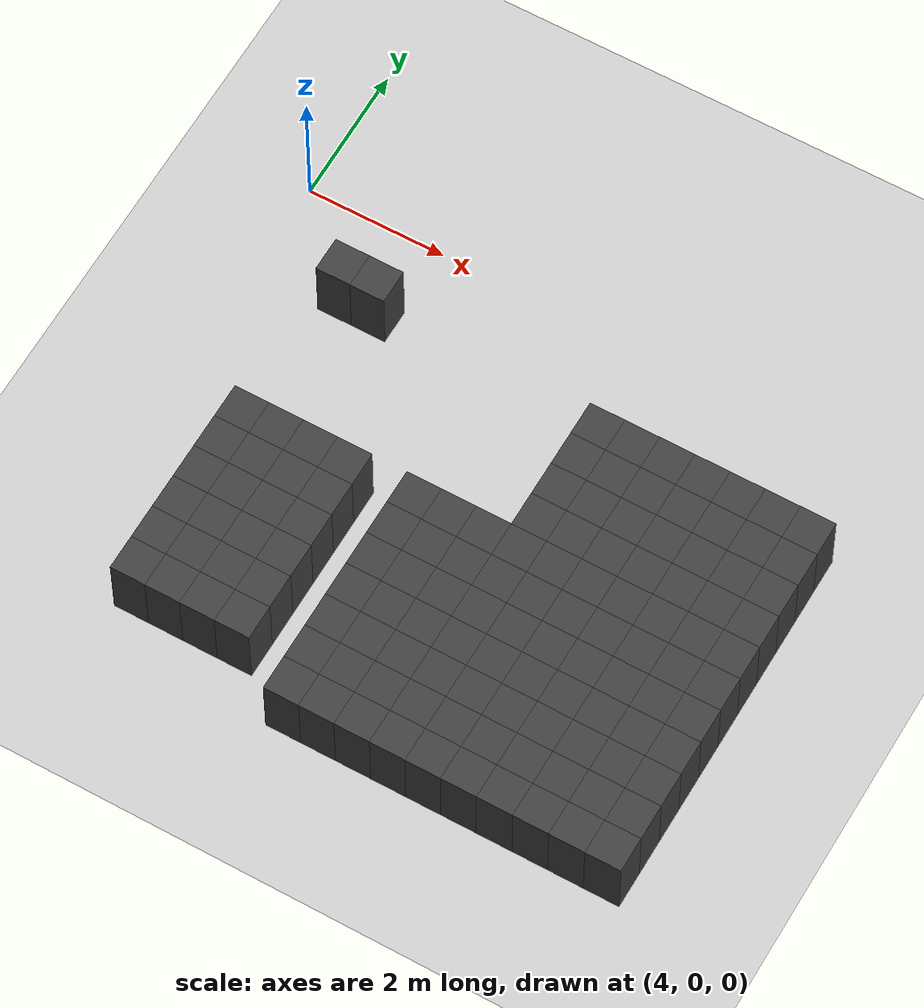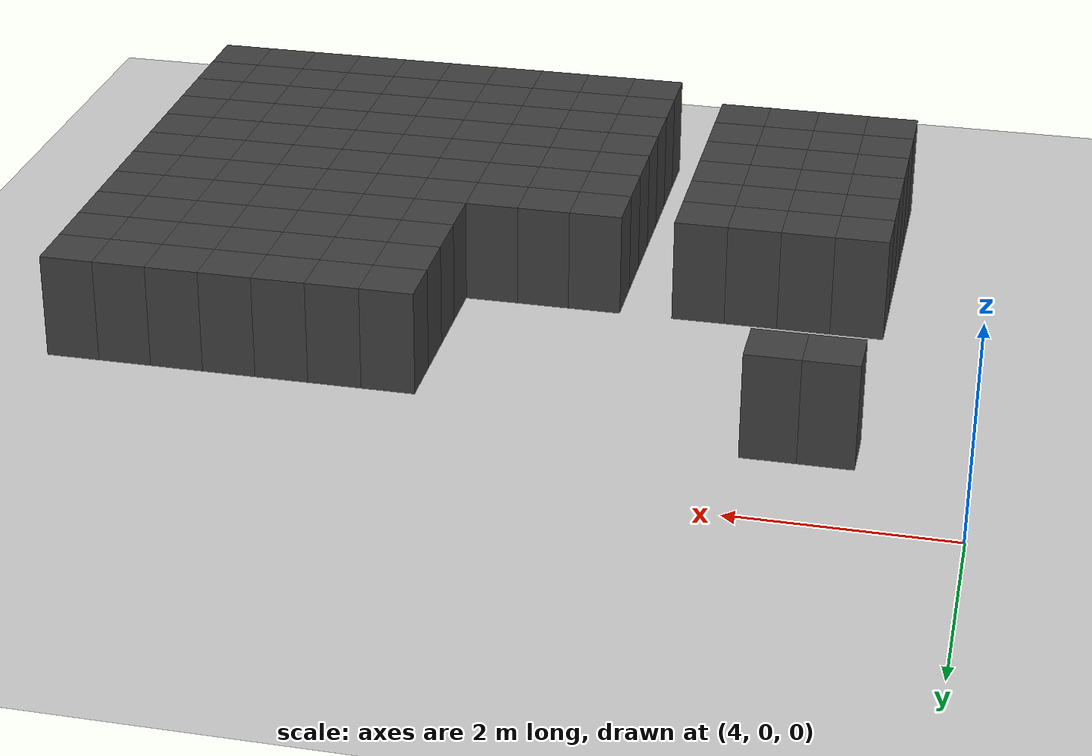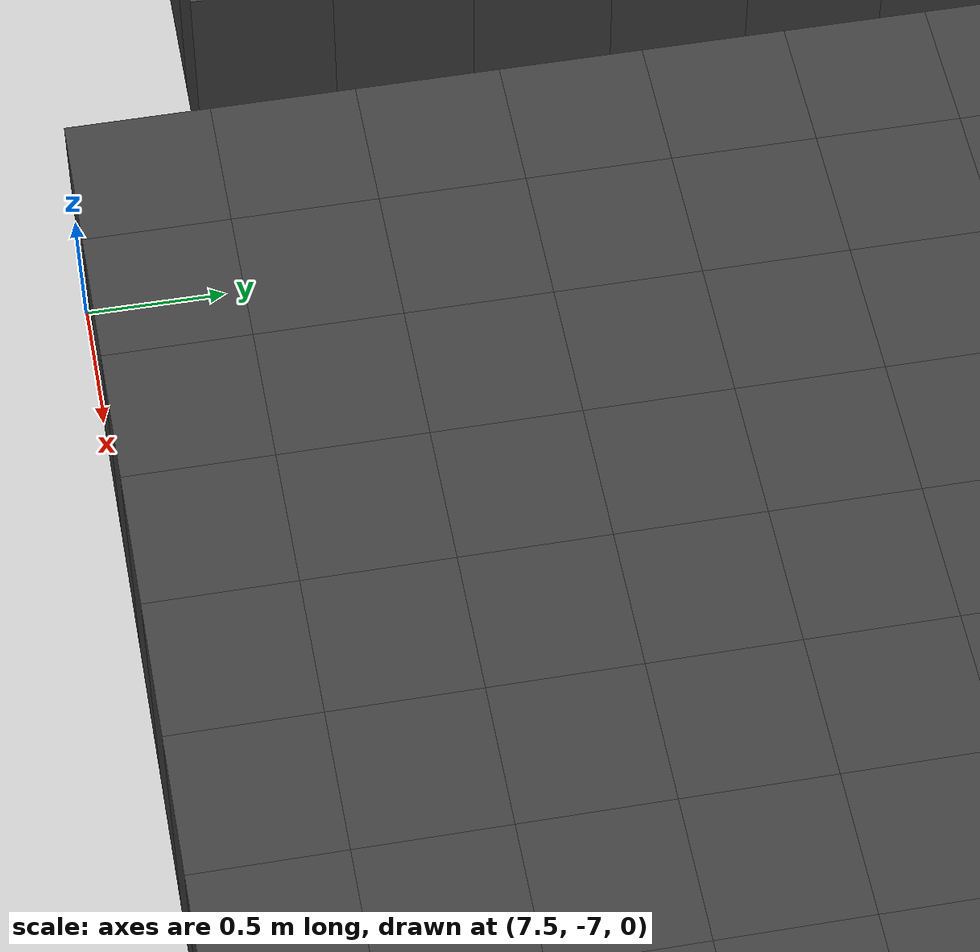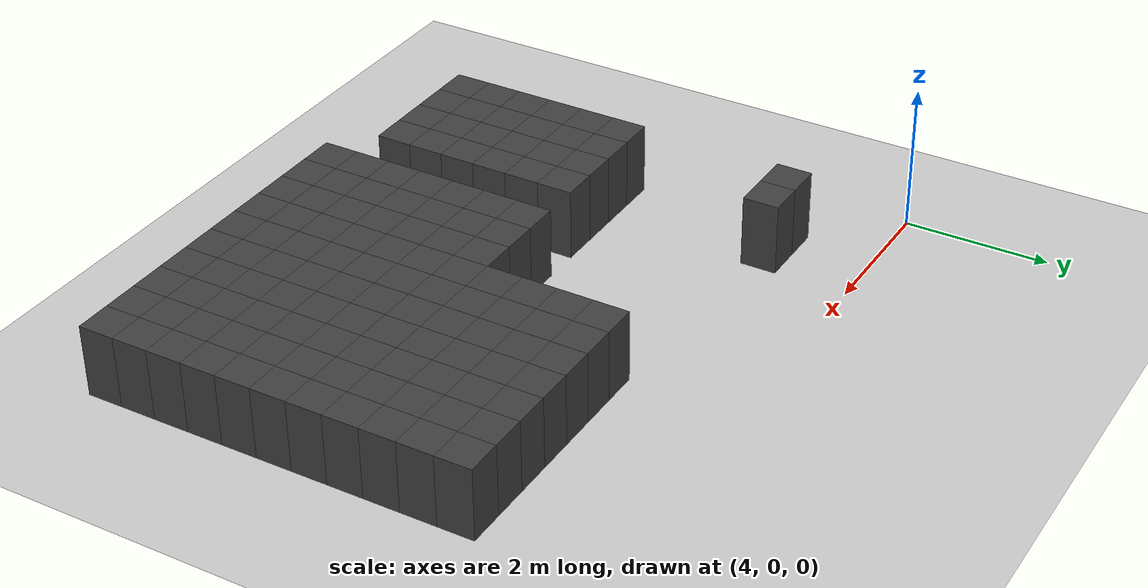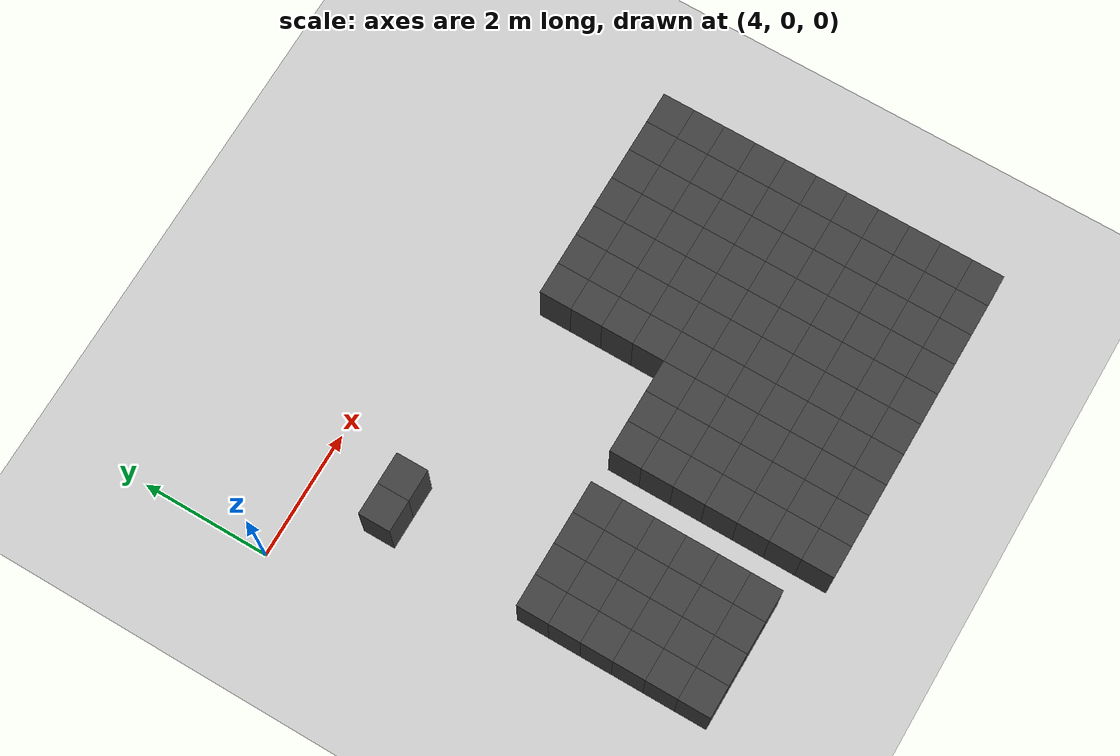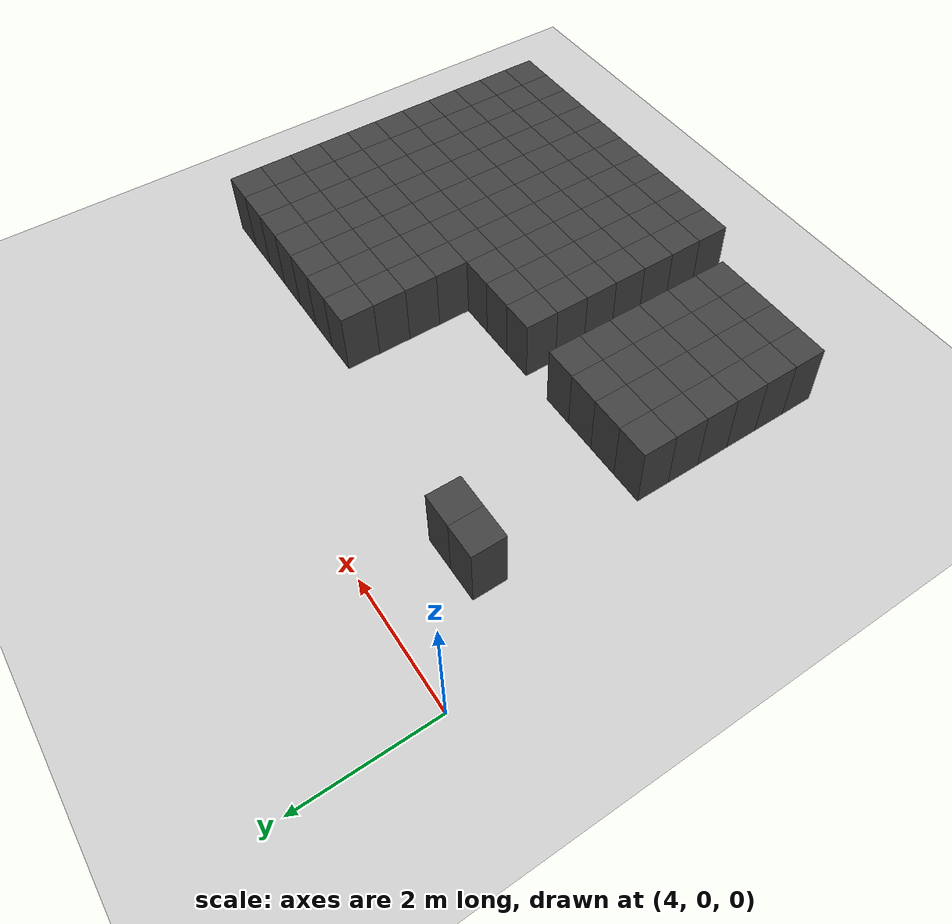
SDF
<sdf version="1.7">
 <world name="map_10726">
  <model name="ground_plane">
   <static>true</static>
   <link name="link">
    <collision name="collision">
     <geometry><plane><normal>0 0 1</normal><size>200 200</size></plane></geometry>
    </collision>
    <visual name="visual">
     <geometry><plane><normal>0 0 1</normal><size>200 200</size></plane></geometry>
     <material><ambient>0.8 0.8 0.8 1</ambient><diffuse>0.8 0.8 0.8 1</diffuse></material>
    </visual>
   </link>
  </model>
  <model name="maze_environment">
   <static>true</static>
   <link name="wall_1225">
    <pose>5.250 -1.250 0.500 0 0 0</pose>
    <collision name="col"><geometry><box><size>0.5 0.5 1.0</size></box></geometry></collision>
    <visual name="vis">
     <geometry><box><size>0.5 0.5 1.0</size></box></geometry>
     <material><ambient>0.15 0.15 0.15 1</ambient><diffuse>0.25 0.25 0.25 1</diffuse></material>
    </visual>
   </link>
   <link name="wall_1226">
    <pose>5.750 -1.250 0.500 0 0 0</pose>
    <collision name="col"><geometry><box><size>0.5 0.5 1.0</size></box></geometry></collision>
    <visual name="vis">
     <geometry><box><size>0.5 0.5 1.0</size></box></geometry>
     <material><ambient>0.15 0.15 0.15 1</ambient><diffuse>0.25 0.25 0.25 1</diffuse></material>
    </visual>
   </link>
   <link name="wall_1265">
    <pose>9.250 -1.750 0.500 0 0 0</pose>
    <collision name="col"><geometry><box><size>0.5 0.5 1.0</size></box></geometry></collision>
    <visual name="vis">
     <geometry><box><size>0.5 0.5 1.0</size></box></geometry>
     <material><ambient>0.15 0.15 0.15 1</ambient><diffuse>0.25 0.25 0.25 1</diffuse></material>
    </visual>
   </link>
   <link name="wall_1266">
    <pose>9.750 -1.750 0.500 0 0 0</pose>
    <collision name="col"><geometry><box><size>0.5 0.5 1.0</size></box></geometry></collision>
    <visual name="vis">
     <geometry><box><size>0.5 0.5 1.0</size></box></geometry>
     <material><ambient>0.15 0.15 0.15 1</ambient><diffuse>0.25 0.25 0.25 1</diffuse></material>
    </visual>
   </link>
   <link name="wall_1267">
    <pose>10.250 -1.750 0.500 0 0 0</pose>
    <collision name="col"><geometry><box><size>0.5 0.5 1.0</size></box></geometry></collision>
    <visual name="vis">
     <geometry><box><size>0.5 0.5 1.0</size></box></geometry>
     <material><ambient>0.15 0.15 0.15 1</ambient><diffuse>0.25 0.25 0.25 1</diffuse></material>
    </visual>
   </link>
   <link name="wall_1268">
    <pose>10.750 -1.750 0.500 0 0 0</pose>
    <collision name="col"><geometry><box><size>0.5 0.5 1.0</size></box></geometry></collision>
    <visual name="vis">
     <geometry><box><size>0.5 0.5 1.0</size></box></geometry>
     <material><ambient>0.15 0.15 0.15 1</ambient><diffuse>0.25 0.25 0.25 1</diffuse></material>
    </visual>
   </link>
   <link name="wall_1269">
    <pose>11.250 -1.750 0.500 0 0 0</pose>
    <collision name="col"><geometry><box><size>0.5 0.5 1.0</size></box></geometry></collision>
    <visual name="vis">
     <geometry><box><size>0.5 0.5 1.0</size></box></geometry>
     <material><ambient>0.15 0.15 0.15 1</ambient><diffuse>0.25 0.25 0.25 1</diffuse></material>
    </visual>
   </link>
   <link name="wall_1270">
    <pose>11.750 -1.750 0.500 0 0 0</pose>
    <collision name="col"><geometry><box><size>0.5 0.5 1.0</size></box></geometry></collision>
    <visual name="vis">
     <geometry><box><size>0.5 0.5 1.0</size></box></geometry>
     <material><ambient>0.15 0.15 0.15 1</ambient><diffuse>0.25 0.25 0.25 1</diffuse></material>
    </visual>
   </link>
   <link name="wall_1271">
    <pose>12.250 -1.750 0.500 0 0 0</pose>
    <collision name="col"><geometry><box><size>0.5 0.5 1.0</size></box></geometry></collision>
    <visual name="vis">
     <geometry><box><size>0.5 0.5 1.0</size></box></geometry>
     <material><ambient>0.15 0.15 0.15 1</ambient><diffuse>0.25 0.25 0.25 1</diffuse></material>
    </visual>
   </link>
   <link name="wall_1297">
    <pose>9.250 -2.250 0.500 0 0 0</pose>
    <collision name="col"><geometry><box><size>0.5 0.5 1.0</size></box></geometry></collision>
    <visual name="vis">
     <geometry><box><size>0.5 0.5 1.0</size></box></geometry>
     <material><ambient>0.15 0.15 0.15 1</ambient><diffuse>0.25 0.25 0.25 1</diffuse></material>
    </visual>
   </link>
   <link name="wall_1298">
    <pose>9.750 -2.250 0.500 0 0 0</pose>
    <collision name="col"><geometry><box><size>0.5 0.5 1.0</size></box></geometry></collision>
    <visual name="vis">
     <geometry><box><size>0.5 0.5 1.0</size></box></geometry>
     <material><ambient>0.15 0.15 0.15 1</ambient><diffuse>0.25 0.25 0.25 1</diffuse></material>
    </visual>
   </link>
   <link name="wall_1299">
    <pose>10.250 -2.250 0.500 0 0 0</pose>
    <collision name="col"><geometry><box><size>0.5 0.5 1.0</size></box></geometry></collision>
    <visual name="vis">
     <geometry><box><size>0.5 0.5 1.0</size></box></geometry>
     <material><ambient>0.15 0.15 0.15 1</ambient><diffuse>0.25 0.25 0.25 1</diffuse></material>
    </visual>
   </link>
   <link name="wall_1300">
    <pose>10.750 -2.250 0.500 0 0 0</pose>
    <collision name="col"><geometry><box><size>0.5 0.5 1.0</size></box></geometry></collision>
    <visual name="vis">
     <geometry><box><size>0.5 0.5 1.0</size></box></geometry>
     <material><ambient>0.15 0.15 0.15 1</ambient><diffuse>0.25 0.25 0.25 1</diffuse></material>
    </visual>
   </link>
   <link name="wall_1301">
    <pose>11.250 -2.250 0.500 0 0 0</pose>
    <collision name="col"><geometry><box><size>0.5 0.5 1.0</size></box></geometry></collision>
    <visual name="vis">
     <geometry><box><size>0.5 0.5 1.0</size></box></geometry>
     <material><ambient>0.15 0.15 0.15 1</ambient><diffuse>0.25 0.25 0.25 1</diffuse></material>
    </visual>
   </link>
   <link name="wall_1302">
    <pose>11.750 -2.250 0.500 0 0 0</pose>
    <collision name="col"><geometry><box><size>0.5 0.5 1.0</size></box></geometry></collision>
    <visual name="vis">
     <geometry><box><size>0.5 0.5 1.0</size></box></geometry>
     <material><ambient>0.15 0.15 0.15 1</ambient><diffuse>0.25 0.25 0.25 1</diffuse></material>
    </visual>
   </link>
   <link name="wall_1303">
    <pose>12.250 -2.250 0.500 0 0 0</pose>
    <collision name="col"><geometry><box><size>0.5 0.5 1.0</size></box></geometry></collision>
    <visual name="vis">
     <geometry><box><size>0.5 0.5 1.0</size></box></geometry>
     <material><ambient>0.15 0.15 0.15 1</ambient><diffuse>0.25 0.25 0.25 1</diffuse></material>
    </visual>
   </link>
   <link name="wall_1321">
    <pose>9.250 -2.750 0.500 0 0 0</pose>
    <collision name="col"><geometry><box><size>0.5 0.5 1.0</size></box></geometry></collision>
    <visual name="vis">
     <geometry><box><size>0.5 0.5 1.0</size></box></geometry>
     <material><ambient>0.15 0.15 0.15 1</ambient><diffuse>0.25 0.25 0.25 1</diffuse></material>
    </visual>
   </link>
   <link name="wall_1322">
    <pose>9.750 -2.750 0.500 0 0 0</pose>
    <collision name="col"><geometry><box><size>0.5 0.5 1.0</size></box></geometry></collision>
    <visual name="vis">
     <geometry><box><size>0.5 0.5 1.0</size></box></geometry>
     <material><ambient>0.15 0.15 0.15 1</ambient><diffuse>0.25 0.25 0.25 1</diffuse></material>
    </visual>
   </link>
   <link name="wall_1323">
    <pose>10.250 -2.750 0.500 0 0 0</pose>
    <collision name="col"><geometry><box><size>0.5 0.5 1.0</size></box></geometry></collision>
    <visual name="vis">
     <geometry><box><size>0.5 0.5 1.0</size></box></geometry>
     <material><ambient>0.15 0.15 0.15 1</ambient><diffuse>0.25 0.25 0.25 1</diffuse></material>
    </visual>
   </link>
   <link name="wall_1324">
    <pose>10.750 -2.750 0.500 0 0 0</pose>
    <collision name="col"><geometry><box><size>0.5 0.5 1.0</size></box></geometry></collision>
    <visual name="vis">
     <geometry><box><size>0.5 0.5 1.0</size></box></geometry>
     <material><ambient>0.15 0.15 0.15 1</ambient><diffuse>0.25 0.25 0.25 1</diffuse></material>
    </visual>
   </link>
   <link name="wall_1325">
    <pose>11.250 -2.750 0.500 0 0 0</pose>
    <collision name="col"><geometry><box><size>0.5 0.5 1.0</size></box></geometry></collision>
    <visual name="vis">
     <geometry><box><size>0.5 0.5 1.0</size></box></geometry>
     <material><ambient>0.15 0.15 0.15 1</ambient><diffuse>0.25 0.25 0.25 1</diffuse></material>
    </visual>
   </link>
   <link name="wall_1326">
    <pose>11.750 -2.750 0.500 0 0 0</pose>
    <collision name="col"><geometry><box><size>0.5 0.5 1.0</size></box></geometry></collision>
    <visual name="vis">
     <geometry><box><size>0.5 0.5 1.0</size></box></geometry>
     <material><ambient>0.15 0.15 0.15 1</ambient><diffuse>0.25 0.25 0.25 1</diffuse></material>
    </visual>
   </link>
   <link name="wall_1327">
    <pose>12.250 -2.750 0.500 0 0 0</pose>
    <collision name="col"><geometry><box><size>0.5 0.5 1.0</size></box></geometry></collision>
    <visual name="vis">
     <geometry><box><size>0.5 0.5 1.0</size></box></geometry>
     <material><ambient>0.15 0.15 0.15 1</ambient><diffuse>0.25 0.25 0.25 1</diffuse></material>
    </visual>
   </link>
   <link name="wall_1353">
    <pose>9.250 -3.250 0.500 0 0 0</pose>
    <collision name="col"><geometry><box><size>0.5 0.5 1.0</size></box></geometry></collision>
    <visual name="vis">
     <geometry><box><size>0.5 0.5 1.0</size></box></geometry>
     <material><ambient>0.15 0.15 0.15 1</ambient><diffuse>0.25 0.25 0.25 1</diffuse></material>
    </visual>
   </link>
   <link name="wall_1354">
    <pose>9.750 -3.250 0.500 0 0 0</pose>
    <collision name="col"><geometry><box><size>0.5 0.5 1.0</size></box></geometry></collision>
    <visual name="vis">
     <geometry><box><size>0.5 0.5 1.0</size></box></geometry>
     <material><ambient>0.15 0.15 0.15 1</ambient><diffuse>0.25 0.25 0.25 1</diffuse></material>
    </visual>
   </link>
   <link name="wall_1355">
    <pose>10.250 -3.250 0.500 0 0 0</pose>
    <collision name="col"><geometry><box><size>0.5 0.5 1.0</size></box></geometry></collision>
    <visual name="vis">
     <geometry><box><size>0.5 0.5 1.0</size></box></geometry>
     <material><ambient>0.15 0.15 0.15 1</ambient><diffuse>0.25 0.25 0.25 1</diffuse></material>
    </visual>
   </link>
   <link name="wall_1356">
    <pose>10.750 -3.250 0.500 0 0 0</pose>
    <collision name="col"><geometry><box><size>0.5 0.5 1.0</size></box></geometry></collision>
    <visual name="vis">
     <geometry><box><size>0.5 0.5 1.0</size></box></geometry>
     <material><ambient>0.15 0.15 0.15 1</ambient><diffuse>0.25 0.25 0.25 1</diffuse></material>
    </visual>
   </link>
   <link name="wall_1357">
    <pose>11.250 -3.250 0.500 0 0 0</pose>
    <collision name="col"><geometry><box><size>0.5 0.5 1.0</size></box></geometry></collision>
    <visual name="vis">
     <geometry><box><size>0.5 0.5 1.0</size></box></geometry>
     <material><ambient>0.15 0.15 0.15 1</ambient><diffuse>0.25 0.25 0.25 1</diffuse></material>
    </visual>
   </link>
   <link name="wall_1358">
    <pose>11.750 -3.250 0.500 0 0 0</pose>
    <collision name="col"><geometry><box><size>0.5 0.5 1.0</size></box></geometry></collision>
    <visual name="vis">
     <geometry><box><size>0.5 0.5 1.0</size></box></geometry>
     <material><ambient>0.15 0.15 0.15 1</ambient><diffuse>0.25 0.25 0.25 1</diffuse></material>
    </visual>
   </link>
   <link name="wall_1359">
    <pose>12.250 -3.250 0.500 0 0 0</pose>
    <collision name="col"><geometry><box><size>0.5 0.5 1.0</size></box></geometry></collision>
    <visual name="vis">
     <geometry><box><size>0.5 0.5 1.0</size></box></geometry>
     <material><ambient>0.15 0.15 0.15 1</ambient><diffuse>0.25 0.25 0.25 1</diffuse></material>
    </visual>
   </link>
   <link name="wall_1385">
    <pose>5.250 -3.750 0.500 0 0 0</pose>
    <collision name="col"><geometry><box><size>0.5 0.5 1.0</size></box></geometry></collision>
    <visual name="vis">
     <geometry><box><size>0.5 0.5 1.0</size></box></geometry>
     <material><ambient>0.15 0.15 0.15 1</ambient><diffuse>0.25 0.25 0.25 1</diffuse></material>
    </visual>
   </link>
   <link name="wall_1386">
    <pose>5.750 -3.750 0.500 0 0 0</pose>
    <collision name="col"><geometry><box><size>0.5 0.5 1.0</size></box></geometry></collision>
    <visual name="vis">
     <geometry><box><size>0.5 0.5 1.0</size></box></geometry>
     <material><ambient>0.15 0.15 0.15 1</ambient><diffuse>0.25 0.25 0.25 1</diffuse></material>
    </visual>
   </link>
   <link name="wall_1387">
    <pose>6.250 -3.750 0.500 0 0 0</pose>
    <collision name="col"><geometry><box><size>0.5 0.5 1.0</size></box></geometry></collision>
    <visual name="vis">
     <geometry><box><size>0.5 0.5 1.0</size></box></geometry>
     <material><ambient>0.15 0.15 0.15 1</ambient><diffuse>0.25 0.25 0.25 1</diffuse></material>
    </visual>
   </link>
   <link name="wall_1388">
    <pose>6.750 -3.750 0.500 0 0 0</pose>
    <collision name="col"><geometry><box><size>0.5 0.5 1.0</size></box></geometry></collision>
    <visual name="vis">
     <geometry><box><size>0.5 0.5 1.0</size></box></geometry>
     <material><ambient>0.15 0.15 0.15 1</ambient><diffuse>0.25 0.25 0.25 1</diffuse></material>
    </visual>
   </link>
   <link name="wall_1389">
    <pose>7.750 -3.750 0.500 0 0 0</pose>
    <collision name="col"><geometry><box><size>0.5 0.5 1.0</size></box></geometry></collision>
    <visual name="vis">
     <geometry><box><size>0.5 0.5 1.0</size></box></geometry>
     <material><ambient>0.15 0.15 0.15 1</ambient><diffuse>0.25 0.25 0.25 1</diffuse></material>
    </visual>
   </link>
   <link name="wall_1390">
    <pose>8.250 -3.750 0.500 0 0 0</pose>
    <collision name="col"><geometry><box><size>0.5 0.5 1.0</size></box></geometry></collision>
    <visual name="vis">
     <geometry><box><size>0.5 0.5 1.0</size></box></geometry>
     <material><ambient>0.15 0.15 0.15 1</ambient><diffuse>0.25 0.25 0.25 1</diffuse></material>
    </visual>
   </link>
   <link name="wall_1391">
    <pose>8.750 -3.750 0.500 0 0 0</pose>
    <collision name="col"><geometry><box><size>0.5 0.5 1.0</size></box></geometry></collision>
    <visual name="vis">
     <geometry><box><size>0.5 0.5 1.0</size></box></geometry>
     <material><ambient>0.15 0.15 0.15 1</ambient><diffuse>0.25 0.25 0.25 1</diffuse></material>
    </visual>
   </link>
   <link name="wall_1392">
    <pose>9.250 -3.750 0.500 0 0 0</pose>
    <collision name="col"><geometry><box><size>0.5 0.5 1.0</size></box></geometry></collision>
    <visual name="vis">
     <geometry><box><size>0.5 0.5 1.0</size></box></geometry>
     <material><ambient>0.15 0.15 0.15 1</ambient><diffuse>0.25 0.25 0.25 1</diffuse></material>
    </visual>
   </link>
   <link name="wall_1393">
    <pose>9.750 -3.750 0.500 0 0 0</pose>
    <collision name="col"><geometry><box><size>0.5 0.5 1.0</size></box></geometry></collision>
    <visual name="vis">
     <geometry><box><size>0.5 0.5 1.0</size></box></geometry>
     <material><ambient>0.15 0.15 0.15 1</ambient><diffuse>0.25 0.25 0.25 1</diffuse></material>
    </visual>
   </link>
   <link name="wall_1394">
    <pose>10.250 -3.750 0.500 0 0 0</pose>
    <collision name="col"><geometry><box><size>0.5 0.5 1.0</size></box></geometry></collision>
    <visual name="vis">
     <geometry><box><size>0.5 0.5 1.0</size></box></geometry>
     <material><ambient>0.15 0.15 0.15 1</ambient><diffuse>0.25 0.25 0.25 1</diffuse></material>
    </visual>
   </link>
   <link name="wall_1395">
    <pose>10.750 -3.750 0.500 0 0 0</pose>
    <collision name="col"><geometry><box><size>0.5 0.5 1.0</size></box></geometry></collision>
    <visual name="vis">
     <geometry><box><size>0.5 0.5 1.0</size></box></geometry>
     <material><ambient>0.15 0.15 0.15 1</ambient><diffuse>0.25 0.25 0.25 1</diffuse></material>
    </visual>
   </link>
   <link name="wall_1396">
    <pose>11.250 -3.750 0.500 0 0 0</pose>
    <collision name="col"><geometry><box><size>0.5 0.5 1.0</size></box></geometry></collision>
    <visual name="vis">
     <geometry><box><size>0.5 0.5 1.0</size></box></geometry>
     <material><ambient>0.15 0.15 0.15 1</ambient><diffuse>0.25 0.25 0.25 1</diffuse></material>
    </visual>
   </link>
   <link name="wall_1397">
    <pose>11.750 -3.750 0.500 0 0 0</pose>
    <collision name="col"><geometry><box><size>0.5 0.5 1.0</size></box></geometry></collision>
    <visual name="vis">
     <geometry><box><size>0.5 0.5 1.0</size></box></geometry>
     <material><ambient>0.15 0.15 0.15 1</ambient><diffuse>0.25 0.25 0.25 1</diffuse></material>
    </visual>
   </link>
   <link name="wall_1398">
    <pose>12.250 -3.750 0.500 0 0 0</pose>
    <collision name="col"><geometry><box><size>0.5 0.5 1.0</size></box></geometry></collision>
    <visual name="vis">
     <geometry><box><size>0.5 0.5 1.0</size></box></geometry>
     <material><ambient>0.15 0.15 0.15 1</ambient><diffuse>0.25 0.25 0.25 1</diffuse></material>
    </visual>
   </link>
   <link name="wall_1419">
    <pose>5.250 -4.250 0.500 0 0 0</pose>
    <collision name="col"><geometry><box><size>0.5 0.5 1.0</size></box></geometry></collision>
    <visual name="vis">
     <geometry><box><size>0.5 0.5 1.0</size></box></geometry>
     <material><ambient>0.15 0.15 0.15 1</ambient><diffuse>0.25 0.25 0.25 1</diffuse></material>
    </visual>
   </link>
   <link name="wall_1420">
    <pose>5.750 -4.250 0.500 0 0 0</pose>
    <collision name="col"><geometry><box><size>0.5 0.5 1.0</size></box></geometry></collision>
    <visual name="vis">
     <geometry><box><size>0.5 0.5 1.0</size></box></geometry>
     <material><ambient>0.15 0.15 0.15 1</ambient><diffuse>0.25 0.25 0.25 1</diffuse></material>
    </visual>
   </link>
   <link name="wall_1421">
    <pose>6.250 -4.250 0.500 0 0 0</pose>
    <collision name="col"><geometry><box><size>0.5 0.5 1.0</size></box></geometry></collision>
    <visual name="vis">
     <geometry><box><size>0.5 0.5 1.0</size></box></geometry>
     <material><ambient>0.15 0.15 0.15 1</ambient><diffuse>0.25 0.25 0.25 1</diffuse></material>
    </visual>
   </link>
   <link name="wall_1422">
    <pose>6.750 -4.250 0.500 0 0 0</pose>
    <collision name="col"><geometry><box><size>0.5 0.5 1.0</size></box></geometry></collision>
    <visual name="vis">
     <geometry><box><size>0.5 0.5 1.0</size></box></geometry>
     <material><ambient>0.15 0.15 0.15 1</ambient><diffuse>0.25 0.25 0.25 1</diffuse></material>
    </visual>
   </link>
   <link name="wall_1423">
    <pose>7.750 -4.250 0.500 0 0 0</pose>
    <collision name="col"><geometry><box><size>0.5 0.5 1.0</size></box></geometry></collision>
    <visual name="vis">
     <geometry><box><size>0.5 0.5 1.0</size></box></geometry>
     <material><ambient>0.15 0.15 0.15 1</ambient><diffuse>0.25 0.25 0.25 1</diffuse></material>
    </visual>
   </link>
   <link name="wall_1424">
    <pose>8.250 -4.250 0.500 0 0 0</pose>
    <collision name="col"><geometry><box><size>0.5 0.5 1.0</size></box></geometry></collision>
    <visual name="vis">
     <geometry><box><size>0.5 0.5 1.0</size></box></geometry>
     <material><ambient>0.15 0.15 0.15 1</ambient><diffuse>0.25 0.25 0.25 1</diffuse></material>
    </visual>
   </link>
   <link name="wall_1425">
    <pose>8.750 -4.250 0.500 0 0 0</pose>
    <collision name="col"><geometry><box><size>0.5 0.5 1.0</size></box></geometry></collision>
    <visual name="vis">
     <geometry><box><size>0.5 0.5 1.0</size></box></geometry>
     <material><ambient>0.15 0.15 0.15 1</ambient><diffuse>0.25 0.25 0.25 1</diffuse></material>
    </visual>
   </link>
   <link name="wall_1426">
    <pose>9.250 -4.250 0.500 0 0 0</pose>
    <collision name="col"><geometry><box><size>0.5 0.5 1.0</size></box></geometry></collision>
    <visual name="vis">
     <geometry><box><size>0.5 0.5 1.0</size></box></geometry>
     <material><ambient>0.15 0.15 0.15 1</ambient><diffuse>0.25 0.25 0.25 1</diffuse></material>
    </visual>
   </link>
   <link name="wall_1427">
    <pose>9.750 -4.250 0.500 0 0 0</pose>
    <collision name="col"><geometry><box><size>0.5 0.5 1.0</size></box></geometry></collision>
    <visual name="vis">
     <geometry><box><size>0.5 0.5 1.0</size></box></geometry>
     <material><ambient>0.15 0.15 0.15 1</ambient><diffuse>0.25 0.25 0.25 1</diffuse></material>
    </visual>
   </link>
   <link name="wall_1428">
    <pose>10.250 -4.250 0.500 0 0 0</pose>
    <collision name="col"><geometry><box><size>0.5 0.5 1.0</size></box></geometry></collision>
    <visual name="vis">
     <geometry><box><size>0.5 0.5 1.0</size></box></geometry>
     <material><ambient>0.15 0.15 0.15 1</ambient><diffuse>0.25 0.25 0.25 1</diffuse></material>
    </visual>
   </link>
   <link name="wall_1429">
    <pose>10.750 -4.250 0.500 0 0 0</pose>
    <collision name="col"><geometry><box><size>0.5 0.5 1.0</size></box></geometry></collision>
    <visual name="vis">
     <geometry><box><size>0.5 0.5 1.0</size></box></geometry>
     <material><ambient>0.15 0.15 0.15 1</ambient><diffuse>0.25 0.25 0.25 1</diffuse></material>
    </visual>
   </link>
   <link name="wall_1430">
    <pose>11.250 -4.250 0.500 0 0 0</pose>
    <collision name="col"><geometry><box><size>0.5 0.5 1.0</size></box></geometry></collision>
    <visual name="vis">
     <geometry><box><size>0.5 0.5 1.0</size></box></geometry>
     <material><ambient>0.15 0.15 0.15 1</ambient><diffuse>0.25 0.25 0.25 1</diffuse></material>
    </visual>
   </link>
   <link name="wall_1431">
    <pose>11.750 -4.250 0.500 0 0 0</pose>
    <collision name="col"><geometry><box><size>0.5 0.5 1.0</size></box></geometry></collision>
    <visual name="vis">
     <geometry><box><size>0.5 0.5 1.0</size></box></geometry>
     <material><ambient>0.15 0.15 0.15 1</ambient><diffuse>0.25 0.25 0.25 1</diffuse></material>
    </visual>
   </link>
   <link name="wall_1432">
    <pose>12.250 -4.250 0.500 0 0 0</pose>
    <collision name="col"><geometry><box><size>0.5 0.5 1.0</size></box></geometry></collision>
    <visual name="vis">
     <geometry><box><size>0.5 0.5 1.0</size></box></geometry>
     <material><ambient>0.15 0.15 0.15 1</ambient><diffuse>0.25 0.25 0.25 1</diffuse></material>
    </visual>
   </link>
   <link name="wall_1460">
    <pose>5.250 -4.750 0.500 0 0 0</pose>
    <collision name="col"><geometry><box><size>0.5 0.5 1.0</size></box></geometry></collision>
    <visual name="vis">
     <geometry><box><size>0.5 0.5 1.0</size></box></geometry>
     <material><ambient>0.15 0.15 0.15 1</ambient><diffuse>0.25 0.25 0.25 1</diffuse></material>
    </visual>
   </link>
   <link name="wall_1461">
    <pose>5.750 -4.750 0.500 0 0 0</pose>
    <collision name="col"><geometry><box><size>0.5 0.5 1.0</size></box></geometry></collision>
    <visual name="vis">
     <geometry><box><size>0.5 0.5 1.0</size></box></geometry>
     <material><ambient>0.15 0.15 0.15 1</ambient><diffuse>0.25 0.25 0.25 1</diffuse></material>
    </visual>
   </link>
   <link name="wall_1462">
    <pose>6.250 -4.750 0.500 0 0 0</pose>
    <collision name="col"><geometry><box><size>0.5 0.5 1.0</size></box></geometry></collision>
    <visual name="vis">
     <geometry><box><size>0.5 0.5 1.0</size></box></geometry>
     <material><ambient>0.15 0.15 0.15 1</ambient><diffuse>0.25 0.25 0.25 1</diffuse></material>
    </visual>
   </link>
   <link name="wall_1463">
    <pose>6.750 -4.750 0.500 0 0 0</pose>
    <collision name="col"><geometry><box><size>0.5 0.5 1.0</size></box></geometry></collision>
    <visual name="vis">
     <geometry><box><size>0.5 0.5 1.0</size></box></geometry>
     <material><ambient>0.15 0.15 0.15 1</ambient><diffuse>0.25 0.25 0.25 1</diffuse></material>
    </visual>
   </link>
   <link name="wall_1464">
    <pose>7.750 -4.750 0.500 0 0 0</pose>
    <collision name="col"><geometry><box><size>0.5 0.5 1.0</size></box></geometry></collision>
    <visual name="vis">
     <geometry><box><size>0.5 0.5 1.0</size></box></geometry>
     <material><ambient>0.15 0.15 0.15 1</ambient><diffuse>0.25 0.25 0.25 1</diffuse></material>
    </visual>
   </link>
   <link name="wall_1465">
    <pose>8.250 -4.750 0.500 0 0 0</pose>
    <collision name="col"><geometry><box><size>0.5 0.5 1.0</size></box></geometry></collision>
    <visual name="vis">
     <geometry><box><size>0.5 0.5 1.0</size></box></geometry>
     <material><ambient>0.15 0.15 0.15 1</ambient><diffuse>0.25 0.25 0.25 1</diffuse></material>
    </visual>
   </link>
   <link name="wall_1466">
    <pose>8.750 -4.750 0.500 0 0 0</pose>
    <collision name="col"><geometry><box><size>0.5 0.5 1.0</size></box></geometry></collision>
    <visual name="vis">
     <geometry><box><size>0.5 0.5 1.0</size></box></geometry>
     <material><ambient>0.15 0.15 0.15 1</ambient><diffuse>0.25 0.25 0.25 1</diffuse></material>
    </visual>
   </link>
   <link name="wall_1467">
    <pose>9.250 -4.750 0.500 0 0 0</pose>
    <collision name="col"><geometry><box><size>0.5 0.5 1.0</size></box></geometry></collision>
    <visual name="vis">
     <geometry><box><size>0.5 0.5 1.0</size></box></geometry>
     <material><ambient>0.15 0.15 0.15 1</ambient><diffuse>0.25 0.25 0.25 1</diffuse></material>
    </visual>
   </link>
   <link name="wall_1468">
    <pose>9.750 -4.750 0.500 0 0 0</pose>
    <collision name="col"><geometry><box><size>0.5 0.5 1.0</size></box></geometry></collision>
    <visual name="vis">
     <geometry><box><size>0.5 0.5 1.0</size></box></geometry>
     <material><ambient>0.15 0.15 0.15 1</ambient><diffuse>0.25 0.25 0.25 1</diffuse></material>
    </visual>
   </link>
   <link name="wall_1469">
    <pose>10.250 -4.750 0.500 0 0 0</pose>
    <collision name="col"><geometry><box><size>0.5 0.5 1.0</size></box></geometry></collision>
    <visual name="vis">
     <geometry><box><size>0.5 0.5 1.0</size></box></geometry>
     <material><ambient>0.15 0.15 0.15 1</ambient><diffuse>0.25 0.25 0.25 1</diffuse></material>
    </visual>
   </link>
   <link name="wall_1470">
    <pose>10.750 -4.750 0.500 0 0 0</pose>
    <collision name="col"><geometry><box><size>0.5 0.5 1.0</size></box></geometry></collision>
    <visual name="vis">
     <geometry><box><size>0.5 0.5 1.0</size></box></geometry>
     <material><ambient>0.15 0.15 0.15 1</ambient><diffuse>0.25 0.25 0.25 1</diffuse></material>
    </visual>
   </link>
   <link name="wall_1471">
    <pose>11.250 -4.750 0.500 0 0 0</pose>
    <collision name="col"><geometry><box><size>0.5 0.5 1.0</size></box></geometry></collision>
    <visual name="vis">
     <geometry><box><size>0.5 0.5 1.0</size></box></geometry>
     <material><ambient>0.15 0.15 0.15 1</ambient><diffuse>0.25 0.25 0.25 1</diffuse></material>
    </visual>
   </link>
   <link name="wall_1472">
    <pose>11.750 -4.750 0.500 0 0 0</pose>
    <collision name="col"><geometry><box><size>0.5 0.5 1.0</size></box></geometry></collision>
    <visual name="vis">
     <geometry><box><size>0.5 0.5 1.0</size></box></geometry>
     <material><ambient>0.15 0.15 0.15 1</ambient><diffuse>0.25 0.25 0.25 1</diffuse></material>
    </visual>
   </link>
   <link name="wall_1473">
    <pose>12.250 -4.750 0.500 0 0 0</pose>
    <collision name="col"><geometry><box><size>0.5 0.5 1.0</size></box></geometry></collision>
    <visual name="vis">
     <geometry><box><size>0.5 0.5 1.0</size></box></geometry>
     <material><ambient>0.15 0.15 0.15 1</ambient><diffuse>0.25 0.25 0.25 1</diffuse></material>
    </visual>
   </link>
   <link name="wall_1498">
    <pose>5.250 -5.250 0.500 0 0 0</pose>
    <collision name="col"><geometry><box><size>0.5 0.5 1.0</size></box></geometry></collision>
    <visual name="vis">
     <geometry><box><size>0.5 0.5 1.0</size></box></geometry>
     <material><ambient>0.15 0.15 0.15 1</ambient><diffuse>0.25 0.25 0.25 1</diffuse></material>
    </visual>
   </link>
   <link name="wall_1499">
    <pose>5.750 -5.250 0.500 0 0 0</pose>
    <collision name="col"><geometry><box><size>0.5 0.5 1.0</size></box></geometry></collision>
    <visual name="vis">
     <geometry><box><size>0.5 0.5 1.0</size></box></geometry>
     <material><ambient>0.15 0.15 0.15 1</ambient><diffuse>0.25 0.25 0.25 1</diffuse></material>
    </visual>
   </link>
   <link name="wall_1500">
    <pose>6.250 -5.250 0.500 0 0 0</pose>
    <collision name="col"><geometry><box><size>0.5 0.5 1.0</size></box></geometry></collision>
    <visual name="vis">
     <geometry><box><size>0.5 0.5 1.0</size></box></geometry>
     <material><ambient>0.15 0.15 0.15 1</ambient><diffuse>0.25 0.25 0.25 1</diffuse></material>
    </visual>
   </link>
   <link name="wall_1501">
    <pose>6.750 -5.250 0.500 0 0 0</pose>
    <collision name="col"><geometry><box><size>0.5 0.5 1.0</size></box></geometry></collision>
    <visual name="vis">
     <geometry><box><size>0.5 0.5 1.0</size></box></geometry>
     <material><ambient>0.15 0.15 0.15 1</ambient><diffuse>0.25 0.25 0.25 1</diffuse></material>
    </visual>
   </link>
   <link name="wall_1502">
    <pose>7.750 -5.250 0.500 0 0 0</pose>
    <collision name="col"><geometry><box><size>0.5 0.5 1.0</size></box></geometry></collision>
    <visual name="vis">
     <geometry><box><size>0.5 0.5 1.0</size></box></geometry>
     <material><ambient>0.15 0.15 0.15 1</ambient><diffuse>0.25 0.25 0.25 1</diffuse></material>
    </visual>
   </link>
   <link name="wall_1503">
    <pose>8.250 -5.250 0.500 0 0 0</pose>
    <collision name="col"><geometry><box><size>0.5 0.5 1.0</size></box></geometry></collision>
    <visual name="vis">
     <geometry><box><size>0.5 0.5 1.0</size></box></geometry>
     <material><ambient>0.15 0.15 0.15 1</ambient><diffuse>0.25 0.25 0.25 1</diffuse></material>
    </visual>
   </link>
   <link name="wall_1504">
    <pose>8.750 -5.250 0.500 0 0 0</pose>
    <collision name="col"><geometry><box><size>0.5 0.5 1.0</size></box></geometry></collision>
    <visual name="vis">
     <geometry><box><size>0.5 0.5 1.0</size></box></geometry>
     <material><ambient>0.15 0.15 0.15 1</ambient><diffuse>0.25 0.25 0.25 1</diffuse></material>
    </visual>
   </link>
   <link name="wall_1505">
    <pose>9.250 -5.250 0.500 0 0 0</pose>
    <collision name="col"><geometry><box><size>0.5 0.5 1.0</size></box></geometry></collision>
    <visual name="vis">
     <geometry><box><size>0.5 0.5 1.0</size></box></geometry>
     <material><ambient>0.15 0.15 0.15 1</ambient><diffuse>0.25 0.25 0.25 1</diffuse></material>
    </visual>
   </link>
   <link name="wall_1506">
    <pose>9.750 -5.250 0.500 0 0 0</pose>
    <collision name="col"><geometry><box><size>0.5 0.5 1.0</size></box></geometry></collision>
    <visual name="vis">
     <geometry><box><size>0.5 0.5 1.0</size></box></geometry>
     <material><ambient>0.15 0.15 0.15 1</ambient><diffuse>0.25 0.25 0.25 1</diffuse></material>
    </visual>
   </link>
   <link name="wall_1507">
    <pose>10.250 -5.250 0.500 0 0 0</pose>
    <collision name="col"><geometry><box><size>0.5 0.5 1.0</size></box></geometry></collision>
    <visual name="vis">
     <geometry><box><size>0.5 0.5 1.0</size></box></geometry>
     <material><ambient>0.15 0.15 0.15 1</ambient><diffuse>0.25 0.25 0.25 1</diffuse></material>
    </visual>
   </link>
   <link name="wall_1508">
    <pose>10.750 -5.250 0.500 0 0 0</pose>
    <collision name="col"><geometry><box><size>0.5 0.5 1.0</size></box></geometry></collision>
    <visual name="vis">
     <geometry><box><size>0.5 0.5 1.0</size></box></geometry>
     <material><ambient>0.15 0.15 0.15 1</ambient><diffuse>0.25 0.25 0.25 1</diffuse></material>
    </visual>
   </link>
   <link name="wall_1509">
    <pose>11.250 -5.250 0.500 0 0 0</pose>
    <collision name="col"><geometry><box><size>0.5 0.5 1.0</size></box></geometry></collision>
    <visual name="vis">
     <geometry><box><size>0.5 0.5 1.0</size></box></geometry>
     <material><ambient>0.15 0.15 0.15 1</ambient><diffuse>0.25 0.25 0.25 1</diffuse></material>
    </visual>
   </link>
   <link name="wall_1510">
    <pose>11.750 -5.250 0.500 0 0 0</pose>
    <collision name="col"><geometry><box><size>0.5 0.5 1.0</size></box></geometry></collision>
    <visual name="vis">
     <geometry><box><size>0.5 0.5 1.0</size></box></geometry>
     <material><ambient>0.15 0.15 0.15 1</ambient><diffuse>0.25 0.25 0.25 1</diffuse></material>
    </visual>
   </link>
   <link name="wall_1511">
    <pose>12.250 -5.250 0.500 0 0 0</pose>
    <collision name="col"><geometry><box><size>0.5 0.5 1.0</size></box></geometry></collision>
    <visual name="vis">
     <geometry><box><size>0.5 0.5 1.0</size></box></geometry>
     <material><ambient>0.15 0.15 0.15 1</ambient><diffuse>0.25 0.25 0.25 1</diffuse></material>
    </visual>
   </link>
   <link name="wall_1540">
    <pose>5.250 -5.750 0.500 0 0 0</pose>
    <collision name="col"><geometry><box><size>0.5 0.5 1.0</size></box></geometry></collision>
    <visual name="vis">
     <geometry><box><size>0.5 0.5 1.0</size></box></geometry>
     <material><ambient>0.15 0.15 0.15 1</ambient><diffuse>0.25 0.25 0.25 1</diffuse></material>
    </visual>
   </link>
   <link name="wall_1541">
    <pose>5.750 -5.750 0.500 0 0 0</pose>
    <collision name="col"><geometry><box><size>0.5 0.5 1.0</size></box></geometry></collision>
    <visual name="vis">
     <geometry><box><size>0.5 0.5 1.0</size></box></geometry>
     <material><ambient>0.15 0.15 0.15 1</ambient><diffuse>0.25 0.25 0.25 1</diffuse></material>
    </visual>
   </link>
   <link name="wall_1542">
    <pose>6.250 -5.750 0.500 0 0 0</pose>
    <collision name="col"><geometry><box><size>0.5 0.5 1.0</size></box></geometry></collision>
    <visual name="vis">
     <geometry><box><size>0.5 0.5 1.0</size></box></geometry>
     <material><ambient>0.15 0.15 0.15 1</ambient><diffuse>0.25 0.25 0.25 1</diffuse></material>
    </visual>
   </link>
   <link name="wall_1543">
    <pose>6.750 -5.750 0.500 0 0 0</pose>
    <collision name="col"><geometry><box><size>0.5 0.5 1.0</size></box></geometry></collision>
    <visual name="vis">
     <geometry><box><size>0.5 0.5 1.0</size></box></geometry>
     <material><ambient>0.15 0.15 0.15 1</ambient><diffuse>0.25 0.25 0.25 1</diffuse></material>
    </visual>
   </link>
   <link name="wall_1544">
    <pose>7.750 -5.750 0.500 0 0 0</pose>
    <collision name="col"><geometry><box><size>0.5 0.5 1.0</size></box></geometry></collision>
    <visual name="vis">
     <geometry><box><size>0.5 0.5 1.0</size></box></geometry>
     <material><ambient>0.15 0.15 0.15 1</ambient><diffuse>0.25 0.25 0.25 1</diffuse></material>
    </visual>
   </link>
   <link name="wall_1545">
    <pose>8.250 -5.750 0.500 0 0 0</pose>
    <collision name="col"><geometry><box><size>0.5 0.5 1.0</size></box></geometry></collision>
    <visual name="vis">
     <geometry><box><size>0.5 0.5 1.0</size></box></geometry>
     <material><ambient>0.15 0.15 0.15 1</ambient><diffuse>0.25 0.25 0.25 1</diffuse></material>
    </visual>
   </link>
   <link name="wall_1546">
    <pose>8.750 -5.750 0.500 0 0 0</pose>
    <collision name="col"><geometry><box><size>0.5 0.5 1.0</size></box></geometry></collision>
    <visual name="vis">
     <geometry><box><size>0.5 0.5 1.0</size></box></geometry>
     <material><ambient>0.15 0.15 0.15 1</ambient><diffuse>0.25 0.25 0.25 1</diffuse></material>
    </visual>
   </link>
   <link name="wall_1547">
    <pose>9.250 -5.750 0.500 0 0 0</pose>
    <collision name="col"><geometry><box><size>0.5 0.5 1.0</size></box></geometry></collision>
    <visual name="vis">
     <geometry><box><size>0.5 0.5 1.0</size></box></geometry>
     <material><ambient>0.15 0.15 0.15 1</ambient><diffuse>0.25 0.25 0.25 1</diffuse></material>
    </visual>
   </link>
   <link name="wall_1548">
    <pose>9.750 -5.750 0.500 0 0 0</pose>
    <collision name="col"><geometry><box><size>0.5 0.5 1.0</size></box></geometry></collision>
    <visual name="vis">
     <geometry><box><size>0.5 0.5 1.0</size></box></geometry>
     <material><ambient>0.15 0.15 0.15 1</ambient><diffuse>0.25 0.25 0.25 1</diffuse></material>
    </visual>
   </link>
   <link name="wall_1549">
    <pose>10.250 -5.750 0.500 0 0 0</pose>
    <collision name="col"><geometry><box><size>0.5 0.5 1.0</size></box></geometry></collision>
    <visual name="vis">
     <geometry><box><size>0.5 0.5 1.0</size></box></geometry>
     <material><ambient>0.15 0.15 0.15 1</ambient><diffuse>0.25 0.25 0.25 1</diffuse></material>
    </visual>
   </link>
   <link name="wall_1550">
    <pose>10.750 -5.750 0.500 0 0 0</pose>
    <collision name="col"><geometry><box><size>0.5 0.5 1.0</size></box></geometry></collision>
    <visual name="vis">
     <geometry><box><size>0.5 0.5 1.0</size></box></geometry>
     <material><ambient>0.15 0.15 0.15 1</ambient><diffuse>0.25 0.25 0.25 1</diffuse></material>
    </visual>
   </link>
   <link name="wall_1551">
    <pose>11.250 -5.750 0.500 0 0 0</pose>
    <collision name="col"><geometry><box><size>0.5 0.5 1.0</size></box></geometry></collision>
    <visual name="vis">
     <geometry><box><size>0.5 0.5 1.0</size></box></geometry>
     <material><ambient>0.15 0.15 0.15 1</ambient><diffuse>0.25 0.25 0.25 1</diffuse></material>
    </visual>
   </link>
   <link name="wall_1552">
    <pose>11.750 -5.750 0.500 0 0 0</pose>
    <collision name="col"><geometry><box><size>0.5 0.5 1.0</size></box></geometry></collision>
    <visual name="vis">
     <geometry><box><size>0.5 0.5 1.0</size></box></geometry>
     <material><ambient>0.15 0.15 0.15 1</ambient><diffuse>0.25 0.25 0.25 1</diffuse></material>
    </visual>
   </link>
   <link name="wall_1553">
    <pose>12.250 -5.750 0.500 0 0 0</pose>
    <collision name="col"><geometry><box><size>0.5 0.5 1.0</size></box></geometry></collision>
    <visual name="vis">
     <geometry><box><size>0.5 0.5 1.0</size></box></geometry>
     <material><ambient>0.15 0.15 0.15 1</ambient><diffuse>0.25 0.25 0.25 1</diffuse></material>
    </visual>
   </link>
   <link name="wall_1582">
    <pose>5.250 -6.250 0.500 0 0 0</pose>
    <collision name="col"><geometry><box><size>0.5 0.5 1.0</size></box></geometry></collision>
    <visual name="vis">
     <geometry><box><size>0.5 0.5 1.0</size></box></geometry>
     <material><ambient>0.15 0.15 0.15 1</ambient><diffuse>0.25 0.25 0.25 1</diffuse></material>
    </visual>
   </link>
   <link name="wall_1583">
    <pose>5.750 -6.250 0.500 0 0 0</pose>
    <collision name="col"><geometry><box><size>0.5 0.5 1.0</size></box></geometry></collision>
    <visual name="vis">
     <geometry><box><size>0.5 0.5 1.0</size></box></geometry>
     <material><ambient>0.15 0.15 0.15 1</ambient><diffuse>0.25 0.25 0.25 1</diffuse></material>
    </visual>
   </link>
   <link name="wall_1584">
    <pose>6.250 -6.250 0.500 0 0 0</pose>
    <collision name="col"><geometry><box><size>0.5 0.5 1.0</size></box></geometry></collision>
    <visual name="vis">
     <geometry><box><size>0.5 0.5 1.0</size></box></geometry>
     <material><ambient>0.15 0.15 0.15 1</ambient><diffuse>0.25 0.25 0.25 1</diffuse></material>
    </visual>
   </link>
   <link name="wall_1585">
    <pose>6.750 -6.250 0.500 0 0 0</pose>
    <collision name="col"><geometry><box><size>0.5 0.5 1.0</size></box></geometry></collision>
    <visual name="vis">
     <geometry><box><size>0.5 0.5 1.0</size></box></geometry>
     <material><ambient>0.15 0.15 0.15 1</ambient><diffuse>0.25 0.25 0.25 1</diffuse></material>
    </visual>
   </link>
   <link name="wall_1586">
    <pose>7.750 -6.250 0.500 0 0 0</pose>
    <collision name="col"><geometry><box><size>0.5 0.5 1.0</size></box></geometry></collision>
    <visual name="vis">
     <geometry><box><size>0.5 0.5 1.0</size></box></geometry>
     <material><ambient>0.15 0.15 0.15 1</ambient><diffuse>0.25 0.25 0.25 1</diffuse></material>
    </visual>
   </link>
   <link name="wall_1587">
    <pose>8.250 -6.250 0.500 0 0 0</pose>
    <collision name="col"><geometry><box><size>0.5 0.5 1.0</size></box></geometry></collision>
    <visual name="vis">
     <geometry><box><size>0.5 0.5 1.0</size></box></geometry>
     <material><ambient>0.15 0.15 0.15 1</ambient><diffuse>0.25 0.25 0.25 1</diffuse></material>
    </visual>
   </link>
   <link name="wall_1588">
    <pose>8.750 -6.250 0.500 0 0 0</pose>
    <collision name="col"><geometry><box><size>0.5 0.5 1.0</size></box></geometry></collision>
    <visual name="vis">
     <geometry><box><size>0.5 0.5 1.0</size></box></geometry>
     <material><ambient>0.15 0.15 0.15 1</ambient><diffuse>0.25 0.25 0.25 1</diffuse></material>
    </visual>
   </link>
   <link name="wall_1589">
    <pose>9.250 -6.250 0.500 0 0 0</pose>
    <collision name="col"><geometry><box><size>0.5 0.5 1.0</size></box></geometry></collision>
    <visual name="vis">
     <geometry><box><size>0.5 0.5 1.0</size></box></geometry>
     <material><ambient>0.15 0.15 0.15 1</ambient><diffuse>0.25 0.25 0.25 1</diffuse></material>
    </visual>
   </link>
   <link name="wall_1590">
    <pose>9.750 -6.250 0.500 0 0 0</pose>
    <collision name="col"><geometry><box><size>0.5 0.5 1.0</size></box></geometry></collision>
    <visual name="vis">
     <geometry><box><size>0.5 0.5 1.0</size></box></geometry>
     <material><ambient>0.15 0.15 0.15 1</ambient><diffuse>0.25 0.25 0.25 1</diffuse></material>
    </visual>
   </link>
   <link name="wall_1591">
    <pose>10.250 -6.250 0.500 0 0 0</pose>
    <collision name="col"><geometry><box><size>0.5 0.5 1.0</size></box></geometry></collision>
    <visual name="vis">
     <geometry><box><size>0.5 0.5 1.0</size></box></geometry>
     <material><ambient>0.15 0.15 0.15 1</ambient><diffuse>0.25 0.25 0.25 1</diffuse></material>
    </visual>
   </link>
   <link name="wall_1592">
    <pose>10.750 -6.250 0.500 0 0 0</pose>
    <collision name="col"><geometry><box><size>0.5 0.5 1.0</size></box></geometry></collision>
    <visual name="vis">
     <geometry><box><size>0.5 0.5 1.0</size></box></geometry>
     <material><ambient>0.15 0.15 0.15 1</ambient><diffuse>0.25 0.25 0.25 1</diffuse></material>
    </visual>
   </link>
   <link name="wall_1593">
    <pose>11.250 -6.250 0.500 0 0 0</pose>
    <collision name="col"><geometry><box><size>0.5 0.5 1.0</size></box></geometry></collision>
    <visual name="vis">
     <geometry><box><size>0.5 0.5 1.0</size></box></geometry>
     <material><ambient>0.15 0.15 0.15 1</ambient><diffuse>0.25 0.25 0.25 1</diffuse></material>
    </visual>
   </link>
   <link name="wall_1594">
    <pose>11.750 -6.250 0.500 0 0 0</pose>
    <collision name="col"><geometry><box><size>0.5 0.5 1.0</size></box></geometry></collision>
    <visual name="vis">
     <geometry><box><size>0.5 0.5 1.0</size></box></geometry>
     <material><ambient>0.15 0.15 0.15 1</ambient><diffuse>0.25 0.25 0.25 1</diffuse></material>
    </visual>
   </link>
   <link name="wall_1595">
    <pose>12.250 -6.250 0.500 0 0 0</pose>
    <collision name="col"><geometry><box><size>0.5 0.5 1.0</size></box></geometry></collision>
    <visual name="vis">
     <geometry><box><size>0.5 0.5 1.0</size></box></geometry>
     <material><ambient>0.15 0.15 0.15 1</ambient><diffuse>0.25 0.25 0.25 1</diffuse></material>
    </visual>
   </link>
   <link name="wall_1634">
    <pose>7.750 -6.750 0.500 0 0 0</pose>
    <collision name="col"><geometry><box><size>0.5 0.5 1.0</size></box></geometry></collision>
    <visual name="vis">
     <geometry><box><size>0.5 0.5 1.0</size></box></geometry>
     <material><ambient>0.15 0.15 0.15 1</ambient><diffuse>0.25 0.25 0.25 1</diffuse></material>
    </visual>
   </link>
   <link name="wall_1635">
    <pose>8.250 -6.750 0.500 0 0 0</pose>
    <collision name="col"><geometry><box><size>0.5 0.5 1.0</size></box></geometry></collision>
    <visual name="vis">
     <geometry><box><size>0.5 0.5 1.0</size></box></geometry>
     <material><ambient>0.15 0.15 0.15 1</ambient><diffuse>0.25 0.25 0.25 1</diffuse></material>
    </visual>
   </link>
   <link name="wall_1636">
    <pose>8.750 -6.750 0.500 0 0 0</pose>
    <collision name="col"><geometry><box><size>0.5 0.5 1.0</size></box></geometry></collision>
    <visual name="vis">
     <geometry><box><size>0.5 0.5 1.0</size></box></geometry>
     <material><ambient>0.15 0.15 0.15 1</ambient><diffuse>0.25 0.25 0.25 1</diffuse></material>
    </visual>
   </link>
   <link name="wall_1637">
    <pose>9.250 -6.750 0.500 0 0 0</pose>
    <collision name="col"><geometry><box><size>0.5 0.5 1.0</size></box></geometry></collision>
    <visual name="vis">
     <geometry><box><size>0.5 0.5 1.0</size></box></geometry>
     <material><ambient>0.15 0.15 0.15 1</ambient><diffuse>0.25 0.25 0.25 1</diffuse></material>
    </visual>
   </link>
   <link name="wall_1638">
    <pose>9.750 -6.750 0.500 0 0 0</pose>
    <collision name="col"><geometry><box><size>0.5 0.5 1.0</size></box></geometry></collision>
    <visual name="vis">
     <geometry><box><size>0.5 0.5 1.0</size></box></geometry>
     <material><ambient>0.15 0.15 0.15 1</ambient><diffuse>0.25 0.25 0.25 1</diffuse></material>
    </visual>
   </link>
   <link name="wall_1639">
    <pose>10.250 -6.750 0.500 0 0 0</pose>
    <collision name="col"><geometry><box><size>0.5 0.5 1.0</size></box></geometry></collision>
    <visual name="vis">
     <geometry><box><size>0.5 0.5 1.0</size></box></geometry>
     <material><ambient>0.15 0.15 0.15 1</ambient><diffuse>0.25 0.25 0.25 1</diffuse></material>
    </visual>
   </link>
   <link name="wall_1640">
    <pose>10.750 -6.750 0.500 0 0 0</pose>
    <collision name="col"><geometry><box><size>0.5 0.5 1.0</size></box></geometry></collision>
    <visual name="vis">
     <geometry><box><size>0.5 0.5 1.0</size></box></geometry>
     <material><ambient>0.15 0.15 0.15 1</ambient><diffuse>0.25 0.25 0.25 1</diffuse></material>
    </visual>
   </link>
   <link name="wall_1641">
    <pose>11.250 -6.750 0.500 0 0 0</pose>
    <collision name="col"><geometry><box><size>0.5 0.5 1.0</size></box></geometry></collision>
    <visual name="vis">
     <geometry><box><size>0.5 0.5 1.0</size></box></geometry>
     <material><ambient>0.15 0.15 0.15 1</ambient><diffuse>0.25 0.25 0.25 1</diffuse></material>
    </visual>
   </link>
   <link name="wall_1642">
    <pose>11.750 -6.750 0.500 0 0 0</pose>
    <collision name="col"><geometry><box><size>0.5 0.5 1.0</size></box></geometry></collision>
    <visual name="vis">
     <geometry><box><size>0.5 0.5 1.0</size></box></geometry>
     <material><ambient>0.15 0.15 0.15 1</ambient><diffuse>0.25 0.25 0.25 1</diffuse></material>
    </visual>
   </link>
   <link name="wall_1643">
    <pose>12.250 -6.750 0.500 0 0 0</pose>
    <collision name="col"><geometry><box><size>0.5 0.5 1.0</size></box></geometry></collision>
    <visual name="vis">
     <geometry><box><size>0.5 0.5 1.0</size></box></geometry>
     <material><ambient>0.15 0.15 0.15 1</ambient><diffuse>0.25 0.25 0.25 1</diffuse></material>
    </visual>
   </link>
  </model>
 </world>
</sdf>
